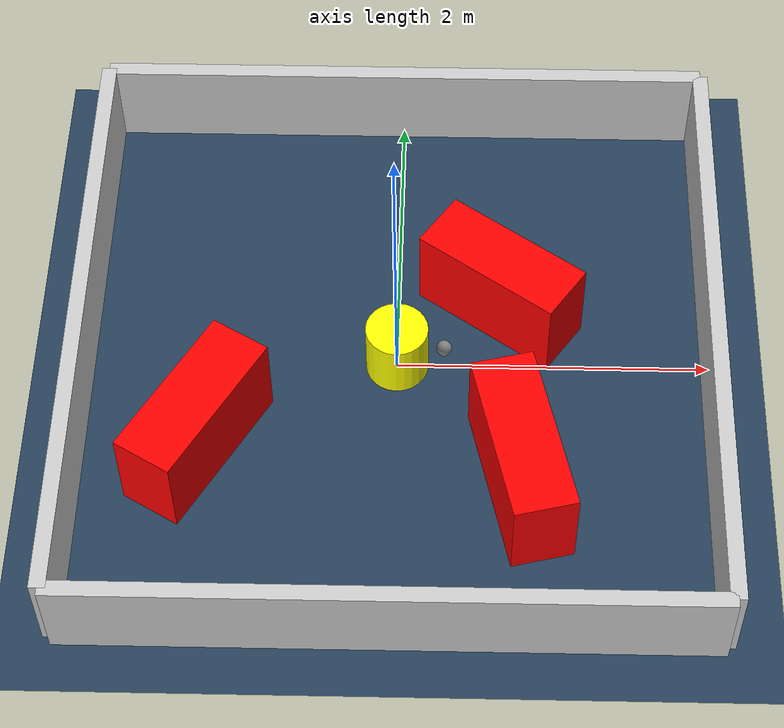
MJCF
<?xml version="1.0" ?>
<mujoco model="generated_environment">
  <option timestep="0.01" integrator="RK4" cone="elliptic"/>
  <default>
    <geom density="1"/>
  </default>
  <asset>
    <texture builtin="gradient" height="3072" rgb1="0.3 0.5 0.7" rgb2="0 0 0" type="skybox" width="512"/>
    <texture builtin="checker" height="300" mark="edge" markrgb="0.8 0.8 0.8" name="groundplane" rgb1="0.2 0.3 0.4" rgb2="0.1 0.2 0.3" type="2d" width="300"/>
    <material name="groundplane" reflectance="0.2" texrepeat="5 5" texture="groundplane" texuniform="true"/>
    <material name="robot" rgba="0.0 1.0 0.0 1"/>
  </asset>
  <worldbody>
    <light dir="0 0 -1" directional="true" pos="0 0 1.5"/>
    <geom condim="4" friction="1.0 0.005 0.001" material="groundplane" name="floor" size="0 0 0.05" type="plane"/>
    <body name="walls">
      <geom name="wall_1" condim="4" pos="-2.0 0.0 0.3" rgba="0.800000011920929 0.800000011920929 0.800000011920929 1.0" size="0.05 2.0 0.3" type="box"/>
      <geom name="wall_2" condim="4" pos="2.0 0.0 0.3" rgba="0.800000011920929 0.800000011920929 0.800000011920929 1.0" size="0.05 2.0 0.3" type="box"/>
      <geom name="wall_3" condim="4" pos="0.0 -2.0 0.3" rgba="0.800000011920929 0.800000011920929 0.800000011920929 1.0" size="2.0 0.05 0.3" type="box"/>
      <geom name="wall_4" condim="4" pos="0.0 2.0 0.3" rgba="0.800000011920929 0.800000011920929 0.800000011920929 1.0" size="2.0 0.05 0.3" type="box"/>
    </body>
    <body name="robot">
      <joint name="joint_x" type="slide" pos="0 0 0" axis="1 0 0"/>
      <joint name="joint_y" type="slide" pos="0 0 0" axis="0 1 0"/>
      <geom name="robot" type="sphere" pos="0.3 0.0 0.2" size="0.05" mass="5." friction="1.0 0.005 0.0001" condim="4" rgba="0.5 0.5 0.5 1.0"/>
      <site name="sensor_ball"/>
    </body>
    <body name="obstacle_movable_1">
      <geom name="obstacle_movable_1" condim="4" pos="0.0 0.0 0.2" euler="0 0 0.0" friction="1.0 0.005 0.001" rgba="1.0 1.0 0.0 1.0" size="0.2 0.2 0.0" type="cylinder" mass="0.1"/>
      <joint type="free"/>
    </body>
    <body name="obstacle_2_static">
      <geom name="obstacle_2_static" condim="4" pos="0.7857882498372504 -0.884530162218797 0.3" euler="0 0 283.75455651873887" friction="1.0 0.005 0.001" rgba="1 0 0 1" size="0.5547637072109046 0.2 0.3" type="box"/>
    </body>
    <body name="obstacle_3_static">
      <geom name="obstacle_3_static" condim="4" pos="0.6598769415768657 0.44348669196297075 0.3" euler="0 0 324.9644264191138" friction="1.0 0.005 0.001" rgba="1 0 0 1" size="0.5066909466325062 0.2 0.3" type="box"/>
    </body>
    <body name="obstacle_4_static">
      <geom name="obstacle_4_static" condim="4" pos="-1.226363213976115 -0.6561302507411941 0.3" euler="0 0 59.720828670156365" friction="1.0 0.005 0.001" rgba="1 0 0 1" size="0.5304303900111209 0.2 0.3" type="box"/>
    </body>
  </worldbody>
  <actuator>
    <motor name="actuator_x" joint="joint_x" gear="1" ctrlrange="-1 1"/>
    <motor name="actuator_y" joint="joint_y" gear="1" ctrlrange="-1 1"/>
  </actuator>
</mujoco>
